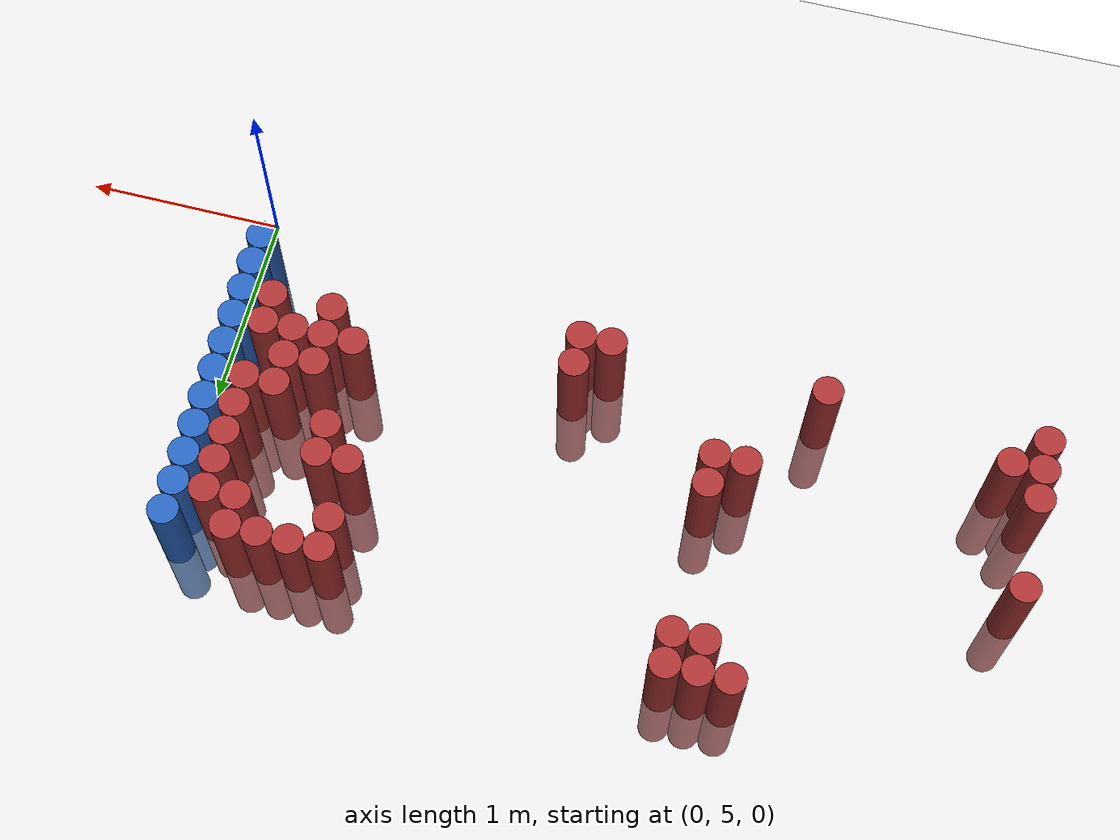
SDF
<sdf version="1.6">
 <world name="default">
  <model name="ground_plane">
   <static>1</static>
   <link name="link">
    <collision name="collision">
     <geometry><plane><normal>0 0 1</normal><size>100 100</size></plane></geometry>
     <surface><friction><ode><mu>100</mu><mu2>50</mu2></ode></friction></surface>
    </collision>
    <visual name="visual">
     <cast_shadows>0</cast_shadows>
     <geometry><plane><normal>0 0 1</normal><size>100 100</size></plane></geometry>
     <material>
      <script><uri>file://media/materials/scripts/gazebo.material</uri><name>Gazebo/Grey</name></script>
     </material>
    </visual>
   </link>
  </model>
  <model name="unit_cylinder_149">
   <static>1</static>
   <pose>-3.975000 5.475000 0.000000 0.000000 0.000000 0.000000</pose>
   <link name="link">
    <inertial>
     <mass>1</mass>
     <inertia><ixx>0.145833</ixx><ixy>0</ixy><ixz>0</ixz><iyy>0.145833</iyy><iyz>0</iyz><izz>0.125</izz></inertia>
    </inertial>
    <collision name="collision">
     <geometry><cylinder><radius>0.075000</radius><length>1</length></cylinder></geometry>
    </collision>
    <visual name="visual">
     <geometry><cylinder><radius>0.075000</radius><length>1</length></cylinder></geometry>
     <material>
      <ambient>0.648000 0.192000 0.192000 1</ambient>
      <diffuse>0.648000 0.192000 0.192000 1</diffuse>
     </material>
     <material>
      <script><name>Gazebo/Grey</name><uri>file://media/materials/scripts/gazebo.material</uri></script>
     </material>
    </visual>
   </link>
  </model>
  <model name="unit_cylinder_150">
   <static>1</static>
   <pose>-3.975000 5.625000 0.000000 0.000000 0.000000 0.000000</pose>
   <link name="link">
    <inertial>
     <mass>1</mass>
     <inertia><ixx>0.145833</ixx><ixy>0</ixy><ixz>0</ixz><iyy>0.145833</iyy><iyz>0</iyz><izz>0.125</izz></inertia>
    </inertial>
    <collision name="collision">
     <geometry><cylinder><radius>0.075000</radius><length>1</length></cylinder></geometry>
    </collision>
    <visual name="visual">
     <geometry><cylinder><radius>0.075000</radius><length>1</length></cylinder></geometry>
     <material>
      <ambient>0.648000 0.192000 0.192000 1</ambient>
      <diffuse>0.648000 0.192000 0.192000 1</diffuse>
     </material>
     <material>
      <script><name>Gazebo/Grey</name><uri>file://media/materials/scripts/gazebo.material</uri></script>
     </material>
    </visual>
   </link>
  </model>
  <model name="unit_cylinder_151">
   <static>1</static>
   <pose>-3.975000 5.775000 0.000000 0.000000 0.000000 0.000000</pose>
   <link name="link">
    <inertial>
     <mass>1</mass>
     <inertia><ixx>0.145833</ixx><ixy>0</ixy><ixz>0</ixz><iyy>0.145833</iyy><iyz>0</iyz><izz>0.125</izz></inertia>
    </inertial>
    <collision name="collision">
     <geometry><cylinder><radius>0.075000</radius><length>1</length></cylinder></geometry>
    </collision>
    <visual name="visual">
     <geometry><cylinder><radius>0.075000</radius><length>1</length></cylinder></geometry>
     <material>
      <ambient>0.648000 0.192000 0.192000 1</ambient>
      <diffuse>0.648000 0.192000 0.192000 1</diffuse>
     </material>
     <material>
      <script><name>Gazebo/Grey</name><uri>file://media/materials/scripts/gazebo.material</uri></script>
     </material>
    </visual>
   </link>
  </model>
  <model name="unit_cylinder_152">
   <static>1</static>
   <pose>-3.975000 6.225000 0.000000 0.000000 0.000000 0.000000</pose>
   <link name="link">
    <inertial>
     <mass>1</mass>
     <inertia><ixx>0.145833</ixx><ixy>0</ixy><ixz>0</ixz><iyy>0.145833</iyy><iyz>0</iyz><izz>0.125</izz></inertia>
    </inertial>
    <collision name="collision">
     <geometry><cylinder><radius>0.075000</radius><length>1</length></cylinder></geometry>
    </collision>
    <visual name="visual">
     <geometry><cylinder><radius>0.075000</radius><length>1</length></cylinder></geometry>
     <material>
      <ambient>0.648000 0.192000 0.192000 1</ambient>
      <diffuse>0.648000 0.192000 0.192000 1</diffuse>
     </material>
     <material>
      <script><name>Gazebo/Grey</name><uri>file://media/materials/scripts/gazebo.material</uri></script>
     </material>
    </visual>
   </link>
  </model>
  <model name="unit_cylinder_154">
   <static>1</static>
   <pose>-3.825000 5.625000 0.000000 0.000000 0.000000 0.000000</pose>
   <link name="link">
    <inertial>
     <mass>1</mass>
     <inertia><ixx>0.145833</ixx><ixy>0</ixy><ixz>0</ixz><iyy>0.145833</iyy><iyz>0</iyz><izz>0.125</izz></inertia>
    </inertial>
    <collision name="collision">
     <geometry><cylinder><radius>0.075000</radius><length>1</length></cylinder></geometry>
    </collision>
    <visual name="visual">
     <geometry><cylinder><radius>0.075000</radius><length>1</length></cylinder></geometry>
     <material>
      <ambient>0.648000 0.192000 0.192000 1</ambient>
      <diffuse>0.648000 0.192000 0.192000 1</diffuse>
     </material>
     <material>
      <script><name>Gazebo/Grey</name><uri>file://media/materials/scripts/gazebo.material</uri></script>
     </material>
    </visual>
   </link>
  </model>
  <model name="unit_cylinder_159">
   <static>1</static>
   <pose>-2.925000 5.475000 0.000000 0.000000 0.000000 0.000000</pose>
   <link name="link">
    <inertial>
     <mass>1</mass>
     <inertia><ixx>0.145833</ixx><ixy>0</ixy><ixz>0</ixz><iyy>0.145833</iyy><iyz>0</iyz><izz>0.125</izz></inertia>
    </inertial>
    <collision name="collision">
     <geometry><cylinder><radius>0.075000</radius><length>1</length></cylinder></geometry>
    </collision>
    <visual name="visual">
     <geometry><cylinder><radius>0.075000</radius><length>1</length></cylinder></geometry>
     <material>
      <ambient>0.648000 0.192000 0.192000 1</ambient>
      <diffuse>0.648000 0.192000 0.192000 1</diffuse>
     </material>
     <material>
      <script><name>Gazebo/Grey</name><uri>file://media/materials/scripts/gazebo.material</uri></script>
     </material>
    </visual>
   </link>
  </model>
  <model name="unit_cylinder_161">
   <static>1</static>
   <pose>-2.775000 6.975000 0.000000 0.000000 0.000000 0.000000</pose>
   <link name="link">
    <inertial>
     <mass>1</mass>
     <inertia><ixx>0.145833</ixx><ixy>0</ixy><ixz>0</ixz><iyy>0.145833</iyy><iyz>0</iyz><izz>0.125</izz></inertia>
    </inertial>
    <collision name="collision">
     <geometry><cylinder><radius>0.075000</radius><length>1</length></cylinder></geometry>
    </collision>
    <visual name="visual">
     <geometry><cylinder><radius>0.075000</radius><length>1</length></cylinder></geometry>
     <material>
      <ambient>0.648000 0.192000 0.192000 1</ambient>
      <diffuse>0.648000 0.192000 0.192000 1</diffuse>
     </material>
     <material>
      <script><name>Gazebo/Grey</name><uri>file://media/materials/scripts/gazebo.material</uri></script>
     </material>
    </visual>
   </link>
  </model>
  <model name="unit_cylinder_163">
   <static>1</static>
   <pose>-2.625000 5.925000 0.000000 0.000000 0.000000 0.000000</pose>
   <link name="link">
    <inertial>
     <mass>1</mass>
     <inertia><ixx>0.145833</ixx><ixy>0</ixy><ixz>0</ixz><iyy>0.145833</iyy><iyz>0</iyz><izz>0.125</izz></inertia>
    </inertial>
    <collision name="collision">
     <geometry><cylinder><radius>0.075000</radius><length>1</length></cylinder></geometry>
    </collision>
    <visual name="visual">
     <geometry><cylinder><radius>0.075000</radius><length>1</length></cylinder></geometry>
     <material>
      <ambient>0.648000 0.192000 0.192000 1</ambient>
      <diffuse>0.648000 0.192000 0.192000 1</diffuse>
     </material>
     <material>
      <script><name>Gazebo/Grey</name><uri>file://media/materials/scripts/gazebo.material</uri></script>
     </material>
    </visual>
   </link>
  </model>
  <model name="unit_cylinder_164">
   <static>1</static>
   <pose>-2.625000 6.825000 0.000000 0.000000 0.000000 0.000000</pose>
   <link name="link">
    <inertial>
     <mass>1</mass>
     <inertia><ixx>0.145833</ixx><ixy>0</ixy><ixz>0</ixz><iyy>0.145833</iyy><iyz>0</iyz><izz>0.125</izz></inertia>
    </inertial>
    <collision name="collision">
     <geometry><cylinder><radius>0.075000</radius><length>1</length></cylinder></geometry>
    </collision>
    <visual name="visual">
     <geometry><cylinder><radius>0.075000</radius><length>1</length></cylinder></geometry>
     <material>
      <ambient>0.648000 0.192000 0.192000 1</ambient>
      <diffuse>0.648000 0.192000 0.192000 1</diffuse>
     </material>
     <material>
      <script><name>Gazebo/Grey</name><uri>file://media/materials/scripts/gazebo.material</uri></script>
     </material>
    </visual>
   </link>
  </model>
  <model name="unit_cylinder_165">
   <static>1</static>
   <pose>-2.625000 6.975000 0.000000 0.000000 0.000000 0.000000</pose>
   <link name="link">
    <inertial>
     <mass>1</mass>
     <inertia><ixx>0.145833</ixx><ixy>0</ixy><ixz>0</ixz><iyy>0.145833</iyy><iyz>0</iyz><izz>0.125</izz></inertia>
    </inertial>
    <collision name="collision">
     <geometry><cylinder><radius>0.075000</radius><length>1</length></cylinder></geometry>
    </collision>
    <visual name="visual">
     <geometry><cylinder><radius>0.075000</radius><length>1</length></cylinder></geometry>
     <material>
      <ambient>0.648000 0.192000 0.192000 1</ambient>
      <diffuse>0.648000 0.192000 0.192000 1</diffuse>
     </material>
     <material>
      <script><name>Gazebo/Grey</name><uri>file://media/materials/scripts/gazebo.material</uri></script>
     </material>
    </visual>
   </link>
  </model>
  <model name="unit_cylinder_170">
   <static>1</static>
   <pose>-2.475000 5.925000 0.000000 0.000000 0.000000 0.000000</pose>
   <link name="link">
    <inertial>
     <mass>1</mass>
     <inertia><ixx>0.145833</ixx><ixy>0</ixy><ixz>0</ixz><iyy>0.145833</iyy><iyz>0</iyz><izz>0.125</izz></inertia>
    </inertial>
    <collision name="collision">
     <geometry><cylinder><radius>0.075000</radius><length>1</length></cylinder></geometry>
    </collision>
    <visual name="visual">
     <geometry><cylinder><radius>0.075000</radius><length>1</length></cylinder></geometry>
     <material>
      <ambient>0.648000 0.192000 0.192000 1</ambient>
      <diffuse>0.648000 0.192000 0.192000 1</diffuse>
     </material>
     <material>
      <script><name>Gazebo/Grey</name><uri>file://media/materials/scripts/gazebo.material</uri></script>
     </material>
    </visual>
   </link>
  </model>
  <model name="unit_cylinder_171">
   <static>1</static>
   <pose>-2.475000 6.075000 0.000000 0.000000 0.000000 0.000000</pose>
   <link name="link">
    <inertial>
     <mass>1</mass>
     <inertia><ixx>0.145833</ixx><ixy>0</ixy><ixz>0</ixz><iyy>0.145833</iyy><iyz>0</iyz><izz>0.125</izz></inertia>
    </inertial>
    <collision name="collision">
     <geometry><cylinder><radius>0.075000</radius><length>1</length></cylinder></geometry>
    </collision>
    <visual name="visual">
     <geometry><cylinder><radius>0.075000</radius><length>1</length></cylinder></geometry>
     <material>
      <ambient>0.648000 0.192000 0.192000 1</ambient>
      <diffuse>0.648000 0.192000 0.192000 1</diffuse>
     </material>
     <material>
      <script><name>Gazebo/Grey</name><uri>file://media/materials/scripts/gazebo.material</uri></script>
     </material>
    </visual>
   </link>
  </model>
  <model name="unit_cylinder_172">
   <static>1</static>
   <pose>-2.475000 6.825000 0.000000 0.000000 0.000000 0.000000</pose>
   <link name="link">
    <inertial>
     <mass>1</mass>
     <inertia><ixx>0.145833</ixx><ixy>0</ixy><ixz>0</ixz><iyy>0.145833</iyy><iyz>0</iyz><izz>0.125</izz></inertia>
    </inertial>
    <collision name="collision">
     <geometry><cylinder><radius>0.075000</radius><length>1</length></cylinder></geometry>
    </collision>
    <visual name="visual">
     <geometry><cylinder><radius>0.075000</radius><length>1</length></cylinder></geometry>
     <material>
      <ambient>0.648000 0.192000 0.192000 1</ambient>
      <diffuse>0.648000 0.192000 0.192000 1</diffuse>
     </material>
     <material>
      <script><name>Gazebo/Grey</name><uri>file://media/materials/scripts/gazebo.material</uri></script>
     </material>
    </visual>
   </link>
  </model>
  <model name="unit_cylinder_173">
   <static>1</static>
   <pose>-2.475000 6.975000 0.000000 0.000000 0.000000 0.000000</pose>
   <link name="link">
    <inertial>
     <mass>1</mass>
     <inertia><ixx>0.145833</ixx><ixy>0</ixy><ixz>0</ixz><iyy>0.145833</iyy><iyz>0</iyz><izz>0.125</izz></inertia>
    </inertial>
    <collision name="collision">
     <geometry><cylinder><radius>0.075000</radius><length>1</length></cylinder></geometry>
    </collision>
    <visual name="visual">
     <geometry><cylinder><radius>0.075000</radius><length>1</length></cylinder></geometry>
     <material>
      <ambient>0.648000 0.192000 0.192000 1</ambient>
      <diffuse>0.648000 0.192000 0.192000 1</diffuse>
     </material>
     <material>
      <script><name>Gazebo/Grey</name><uri>file://media/materials/scripts/gazebo.material</uri></script>
     </material>
    </visual>
   </link>
  </model>
  <model name="unit_cylinder_177">
   <static>1</static>
   <pose>-1.875000 5.475000 0.000000 0.000000 0.000000 0.000000</pose>
   <link name="link">
    <inertial>
     <mass>1</mass>
     <inertia><ixx>0.145833</ixx><ixy>0</ixy><ixz>0</ixz><iyy>0.145833</iyy><iyz>0</iyz><izz>0.125</izz></inertia>
    </inertial>
    <collision name="collision">
     <geometry><cylinder><radius>0.075000</radius><length>1</length></cylinder></geometry>
    </collision>
    <visual name="visual">
     <geometry><cylinder><radius>0.075000</radius><length>1</length></cylinder></geometry>
     <material>
      <ambient>0.648000 0.192000 0.192000 1</ambient>
      <diffuse>0.648000 0.192000 0.192000 1</diffuse>
     </material>
     <material>
      <script><name>Gazebo/Grey</name><uri>file://media/materials/scripts/gazebo.material</uri></script>
     </material>
    </visual>
   </link>
  </model>
  <model name="unit_cylinder_178">
   <static>1</static>
   <pose>-1.725000 5.475000 0.000000 0.000000 0.000000 0.000000</pose>
   <link name="link">
    <inertial>
     <mass>1</mass>
     <inertia><ixx>0.145833</ixx><ixy>0</ixy><ixz>0</ixz><iyy>0.145833</iyy><iyz>0</iyz><izz>0.125</izz></inertia>
    </inertial>
    <collision name="collision">
     <geometry><cylinder><radius>0.075000</radius><length>1</length></cylinder></geometry>
    </collision>
    <visual name="visual">
     <geometry><cylinder><radius>0.075000</radius><length>1</length></cylinder></geometry>
     <material>
      <ambient>0.648000 0.192000 0.192000 1</ambient>
      <diffuse>0.648000 0.192000 0.192000 1</diffuse>
     </material>
     <material>
      <script><name>Gazebo/Grey</name><uri>file://media/materials/scripts/gazebo.material</uri></script>
     </material>
    </visual>
   </link>
  </model>
  <model name="unit_cylinder_179">
   <static>1</static>
   <pose>-1.725000 5.625000 0.000000 0.000000 0.000000 0.000000</pose>
   <link name="link">
    <inertial>
     <mass>1</mass>
     <inertia><ixx>0.145833</ixx><ixy>0</ixy><ixz>0</ixz><iyy>0.145833</iyy><iyz>0</iyz><izz>0.125</izz></inertia>
    </inertial>
    <collision name="collision">
     <geometry><cylinder><radius>0.075000</radius><length>1</length></cylinder></geometry>
    </collision>
    <visual name="visual">
     <geometry><cylinder><radius>0.075000</radius><length>1</length></cylinder></geometry>
     <material>
      <ambient>0.648000 0.192000 0.192000 1</ambient>
      <diffuse>0.648000 0.192000 0.192000 1</diffuse>
     </material>
     <material>
      <script><name>Gazebo/Grey</name><uri>file://media/materials/scripts/gazebo.material</uri></script>
     </material>
    </visual>
   </link>
  </model>
  <model name="unit_cylinder_180">
   <static>1</static>
   <pose>-0.825000 6.375000 0.000000 0.000000 0.000000 0.000000</pose>
   <link name="link">
    <inertial>
     <mass>1</mass>
     <inertia><ixx>0.145833</ixx><ixy>0</ixy><ixz>0</ixz><iyy>0.145833</iyy><iyz>0</iyz><izz>0.125</izz></inertia>
    </inertial>
    <collision name="collision">
     <geometry><cylinder><radius>0.075000</radius><length>1</length></cylinder></geometry>
    </collision>
    <visual name="visual">
     <geometry><cylinder><radius>0.075000</radius><length>1</length></cylinder></geometry>
     <material>
      <ambient>0.648000 0.192000 0.192000 1</ambient>
      <diffuse>0.648000 0.192000 0.192000 1</diffuse>
     </material>
     <material>
      <script><name>Gazebo/Grey</name><uri>file://media/materials/scripts/gazebo.material</uri></script>
     </material>
    </visual>
   </link>
  </model>
  <model name="unit_cylinder_181">
   <static>1</static>
   <pose>-0.825000 6.675000 0.000000 0.000000 0.000000 0.000000</pose>
   <link name="link">
    <inertial>
     <mass>1</mass>
     <inertia><ixx>0.145833</ixx><ixy>0</ixy><ixz>0</ixz><iyy>0.145833</iyy><iyz>0</iyz><izz>0.125</izz></inertia>
    </inertial>
    <collision name="collision">
     <geometry><cylinder><radius>0.075000</radius><length>1</length></cylinder></geometry>
    </collision>
    <visual name="visual">
     <geometry><cylinder><radius>0.075000</radius><length>1</length></cylinder></geometry>
     <material>
      <ambient>0.648000 0.192000 0.192000 1</ambient>
      <diffuse>0.648000 0.192000 0.192000 1</diffuse>
     </material>
     <material>
      <script><name>Gazebo/Grey</name><uri>file://media/materials/scripts/gazebo.material</uri></script>
     </material>
    </visual>
   </link>
  </model>
  <model name="unit_cylinder_182">
   <static>1</static>
   <pose>-0.825000 6.825000 0.000000 0.000000 0.000000 0.000000</pose>
   <link name="link">
    <inertial>
     <mass>1</mass>
     <inertia><ixx>0.145833</ixx><ixy>0</ixy><ixz>0</ixz><iyy>0.145833</iyy><iyz>0</iyz><izz>0.125</izz></inertia>
    </inertial>
    <collision name="collision">
     <geometry><cylinder><radius>0.075000</radius><length>1</length></cylinder></geometry>
    </collision>
    <visual name="visual">
     <geometry><cylinder><radius>0.075000</radius><length>1</length></cylinder></geometry>
     <material>
      <ambient>0.648000 0.192000 0.192000 1</ambient>
      <diffuse>0.648000 0.192000 0.192000 1</diffuse>
     </material>
     <material>
      <script><name>Gazebo/Grey</name><uri>file://media/materials/scripts/gazebo.material</uri></script>
     </material>
    </visual>
   </link>
  </model>
  <model name="unit_cylinder_183">
   <static>1</static>
   <pose>-0.675000 5.775000 0.000000 0.000000 0.000000 0.000000</pose>
   <link name="link">
    <inertial>
     <mass>1</mass>
     <inertia><ixx>0.145833</ixx><ixy>0</ixy><ixz>0</ixz><iyy>0.145833</iyy><iyz>0</iyz><izz>0.125</izz></inertia>
    </inertial>
    <collision name="collision">
     <geometry><cylinder><radius>0.075000</radius><length>1</length></cylinder></geometry>
    </collision>
    <visual name="visual">
     <geometry><cylinder><radius>0.075000</radius><length>1</length></cylinder></geometry>
     <material>
      <ambient>0.648000 0.192000 0.192000 1</ambient>
      <diffuse>0.648000 0.192000 0.192000 1</diffuse>
     </material>
     <material>
      <script><name>Gazebo/Grey</name><uri>file://media/materials/scripts/gazebo.material</uri></script>
     </material>
    </visual>
   </link>
  </model>
  <model name="unit_cylinder_184">
   <static>1</static>
   <pose>-0.675000 6.225000 0.000000 0.000000 0.000000 0.000000</pose>
   <link name="link">
    <inertial>
     <mass>1</mass>
     <inertia><ixx>0.145833</ixx><ixy>0</ixy><ixz>0</ixz><iyy>0.145833</iyy><iyz>0</iyz><izz>0.125</izz></inertia>
    </inertial>
    <collision name="collision">
     <geometry><cylinder><radius>0.075000</radius><length>1</length></cylinder></geometry>
    </collision>
    <visual name="visual">
     <geometry><cylinder><radius>0.075000</radius><length>1</length></cylinder></geometry>
     <material>
      <ambient>0.648000 0.192000 0.192000 1</ambient>
      <diffuse>0.648000 0.192000 0.192000 1</diffuse>
     </material>
     <material>
      <script><name>Gazebo/Grey</name><uri>file://media/materials/scripts/gazebo.material</uri></script>
     </material>
    </visual>
   </link>
  </model>
  <model name="unit_cylinder_185">
   <static>1</static>
   <pose>-0.675000 6.375000 0.000000 0.000000 0.000000 0.000000</pose>
   <link name="link">
    <inertial>
     <mass>1</mass>
     <inertia><ixx>0.145833</ixx><ixy>0</ixy><ixz>0</ixz><iyy>0.145833</iyy><iyz>0</iyz><izz>0.125</izz></inertia>
    </inertial>
    <collision name="collision">
     <geometry><cylinder><radius>0.075000</radius><length>1</length></cylinder></geometry>
    </collision>
    <visual name="visual">
     <geometry><cylinder><radius>0.075000</radius><length>1</length></cylinder></geometry>
     <material>
      <ambient>0.648000 0.192000 0.192000 1</ambient>
      <diffuse>0.648000 0.192000 0.192000 1</diffuse>
     </material>
     <material>
      <script><name>Gazebo/Grey</name><uri>file://media/materials/scripts/gazebo.material</uri></script>
     </material>
    </visual>
   </link>
  </model>
  <model name="unit_cylinder_186">
   <static>1</static>
   <pose>-0.675000 6.825000 0.000000 0.000000 0.000000 0.000000</pose>
   <link name="link">
    <inertial>
     <mass>1</mass>
     <inertia><ixx>0.145833</ixx><ixy>0</ixy><ixz>0</ixz><iyy>0.145833</iyy><iyz>0</iyz><izz>0.125</izz></inertia>
    </inertial>
    <collision name="collision">
     <geometry><cylinder><radius>0.075000</radius><length>1</length></cylinder></geometry>
    </collision>
    <visual name="visual">
     <geometry><cylinder><radius>0.075000</radius><length>1</length></cylinder></geometry>
     <material>
      <ambient>0.648000 0.192000 0.192000 1</ambient>
      <diffuse>0.648000 0.192000 0.192000 1</diffuse>
     </material>
     <material>
      <script><name>Gazebo/Grey</name><uri>file://media/materials/scripts/gazebo.material</uri></script>
     </material>
    </visual>
   </link>
  </model>
  <model name="unit_cylinder_191">
   <static>1</static>
   <pose>-0.525000 5.625000 0.000000 0.000000 0.000000 0.000000</pose>
   <link name="link">
    <inertial>
     <mass>1</mass>
     <inertia><ixx>0.145833</ixx><ixy>0</ixy><ixz>0</ixz><iyy>0.145833</iyy><iyz>0</iyz><izz>0.125</izz></inertia>
    </inertial>
    <collision name="collision">
     <geometry><cylinder><radius>0.075000</radius><length>1</length></cylinder></geometry>
    </collision>
    <visual name="visual">
     <geometry><cylinder><radius>0.075000</radius><length>1</length></cylinder></geometry>
     <material>
      <ambient>0.648000 0.192000 0.192000 1</ambient>
      <diffuse>0.648000 0.192000 0.192000 1</diffuse>
     </material>
     <material>
      <script><name>Gazebo/Grey</name><uri>file://media/materials/scripts/gazebo.material</uri></script>
     </material>
    </visual>
   </link>
  </model>
  <model name="unit_cylinder_192">
   <static>1</static>
   <pose>-0.525000 5.775000 0.000000 0.000000 0.000000 0.000000</pose>
   <link name="link">
    <inertial>
     <mass>1</mass>
     <inertia><ixx>0.145833</ixx><ixy>0</ixy><ixz>0</ixz><iyy>0.145833</iyy><iyz>0</iyz><izz>0.125</izz></inertia>
    </inertial>
    <collision name="collision">
     <geometry><cylinder><radius>0.075000</radius><length>1</length></cylinder></geometry>
    </collision>
    <visual name="visual">
     <geometry><cylinder><radius>0.075000</radius><length>1</length></cylinder></geometry>
     <material>
      <ambient>0.648000 0.192000 0.192000 1</ambient>
      <diffuse>0.648000 0.192000 0.192000 1</diffuse>
     </material>
     <material>
      <script><name>Gazebo/Grey</name><uri>file://media/materials/scripts/gazebo.material</uri></script>
     </material>
    </visual>
   </link>
  </model>
  <model name="unit_cylinder_193">
   <static>1</static>
   <pose>-0.525000 5.925000 0.000000 0.000000 0.000000 0.000000</pose>
   <link name="link">
    <inertial>
     <mass>1</mass>
     <inertia><ixx>0.145833</ixx><ixy>0</ixy><ixz>0</ixz><iyy>0.145833</iyy><iyz>0</iyz><izz>0.125</izz></inertia>
    </inertial>
    <collision name="collision">
     <geometry><cylinder><radius>0.075000</radius><length>1</length></cylinder></geometry>
    </collision>
    <visual name="visual">
     <geometry><cylinder><radius>0.075000</radius><length>1</length></cylinder></geometry>
     <material>
      <ambient>0.648000 0.192000 0.192000 1</ambient>
      <diffuse>0.648000 0.192000 0.192000 1</diffuse>
     </material>
     <material>
      <script><name>Gazebo/Grey</name><uri>file://media/materials/scripts/gazebo.material</uri></script>
     </material>
    </visual>
   </link>
  </model>
  <model name="unit_cylinder_194">
   <static>1</static>
   <pose>-0.525000 6.825000 0.000000 0.000000 0.000000 0.000000</pose>
   <link name="link">
    <inertial>
     <mass>1</mass>
     <inertia><ixx>0.145833</ixx><ixy>0</ixy><ixz>0</ixz><iyy>0.145833</iyy><iyz>0</iyz><izz>0.125</izz></inertia>
    </inertial>
    <collision name="collision">
     <geometry><cylinder><radius>0.075000</radius><length>1</length></cylinder></geometry>
    </collision>
    <visual name="visual">
     <geometry><cylinder><radius>0.075000</radius><length>1</length></cylinder></geometry>
     <material>
      <ambient>0.648000 0.192000 0.192000 1</ambient>
      <diffuse>0.648000 0.192000 0.192000 1</diffuse>
     </material>
     <material>
      <script><name>Gazebo/Grey</name><uri>file://media/materials/scripts/gazebo.material</uri></script>
     </material>
    </visual>
   </link>
  </model>
  <model name="unit_cylinder_201">
   <static>1</static>
   <pose>-0.375000 5.775000 0.000000 0.000000 0.000000 0.000000</pose>
   <link name="link">
    <inertial>
     <mass>1</mass>
     <inertia><ixx>0.145833</ixx><ixy>0</ixy><ixz>0</ixz><iyy>0.145833</iyy><iyz>0</iyz><izz>0.125</izz></inertia>
    </inertial>
    <collision name="collision">
     <geometry><cylinder><radius>0.075000</radius><length>1</length></cylinder></geometry>
    </collision>
    <visual name="visual">
     <geometry><cylinder><radius>0.075000</radius><length>1</length></cylinder></geometry>
     <material>
      <ambient>0.648000 0.192000 0.192000 1</ambient>
      <diffuse>0.648000 0.192000 0.192000 1</diffuse>
     </material>
     <material>
      <script><name>Gazebo/Grey</name><uri>file://media/materials/scripts/gazebo.material</uri></script>
     </material>
    </visual>
   </link>
  </model>
  <model name="unit_cylinder_202">
   <static>1</static>
   <pose>-0.375000 5.925000 0.000000 0.000000 0.000000 0.000000</pose>
   <link name="link">
    <inertial>
     <mass>1</mass>
     <inertia><ixx>0.145833</ixx><ixy>0</ixy><ixz>0</ixz><iyy>0.145833</iyy><iyz>0</iyz><izz>0.125</izz></inertia>
    </inertial>
    <collision name="collision">
     <geometry><cylinder><radius>0.075000</radius><length>1</length></cylinder></geometry>
    </collision>
    <visual name="visual">
     <geometry><cylinder><radius>0.075000</radius><length>1</length></cylinder></geometry>
     <material>
      <ambient>0.648000 0.192000 0.192000 1</ambient>
      <diffuse>0.648000 0.192000 0.192000 1</diffuse>
     </material>
     <material>
      <script><name>Gazebo/Grey</name><uri>file://media/materials/scripts/gazebo.material</uri></script>
     </material>
    </visual>
   </link>
  </model>
  <model name="unit_cylinder_203">
   <static>1</static>
   <pose>-0.375000 6.075000 0.000000 0.000000 0.000000 0.000000</pose>
   <link name="link">
    <inertial>
     <mass>1</mass>
     <inertia><ixx>0.145833</ixx><ixy>0</ixy><ixz>0</ixz><iyy>0.145833</iyy><iyz>0</iyz><izz>0.125</izz></inertia>
    </inertial>
    <collision name="collision">
     <geometry><cylinder><radius>0.075000</radius><length>1</length></cylinder></geometry>
    </collision>
    <visual name="visual">
     <geometry><cylinder><radius>0.075000</radius><length>1</length></cylinder></geometry>
     <material>
      <ambient>0.648000 0.192000 0.192000 1</ambient>
      <diffuse>0.648000 0.192000 0.192000 1</diffuse>
     </material>
     <material>
      <script><name>Gazebo/Grey</name><uri>file://media/materials/scripts/gazebo.material</uri></script>
     </material>
    </visual>
   </link>
  </model>
  <model name="unit_cylinder_204">
   <static>1</static>
   <pose>-0.375000 6.675000 0.000000 0.000000 0.000000 0.000000</pose>
   <link name="link">
    <inertial>
     <mass>1</mass>
     <inertia><ixx>0.145833</ixx><ixy>0</ixy><ixz>0</ixz><iyy>0.145833</iyy><iyz>0</iyz><izz>0.125</izz></inertia>
    </inertial>
    <collision name="collision">
     <geometry><cylinder><radius>0.075000</radius><length>1</length></cylinder></geometry>
    </collision>
    <visual name="visual">
     <geometry><cylinder><radius>0.075000</radius><length>1</length></cylinder></geometry>
     <material>
      <ambient>0.648000 0.192000 0.192000 1</ambient>
      <diffuse>0.648000 0.192000 0.192000 1</diffuse>
     </material>
     <material>
      <script><name>Gazebo/Grey</name><uri>file://media/materials/scripts/gazebo.material</uri></script>
     </material>
    </visual>
   </link>
  </model>
  <model name="unit_cylinder_205">
   <static>1</static>
   <pose>-0.375000 6.825000 0.000000 0.000000 0.000000 0.000000</pose>
   <link name="link">
    <inertial>
     <mass>1</mass>
     <inertia><ixx>0.145833</ixx><ixy>0</ixy><ixz>0</ixz><iyy>0.145833</iyy><iyz>0</iyz><izz>0.125</izz></inertia>
    </inertial>
    <collision name="collision">
     <geometry><cylinder><radius>0.075000</radius><length>1</length></cylinder></geometry>
    </collision>
    <visual name="visual">
     <geometry><cylinder><radius>0.075000</radius><length>1</length></cylinder></geometry>
     <material>
      <ambient>0.648000 0.192000 0.192000 1</ambient>
      <diffuse>0.648000 0.192000 0.192000 1</diffuse>
     </material>
     <material>
      <script><name>Gazebo/Grey</name><uri>file://media/materials/scripts/gazebo.material</uri></script>
     </material>
    </visual>
   </link>
  </model>
  <model name="unit_cylinder_210">
   <static>1</static>
   <pose>-0.225000 5.625000 0.000000 0.000000 0.000000 0.000000</pose>
   <link name="link">
    <inertial>
     <mass>1</mass>
     <inertia><ixx>0.145833</ixx><ixy>0</ixy><ixz>0</ixz><iyy>0.145833</iyy><iyz>0</iyz><izz>0.125</izz></inertia>
    </inertial>
    <collision name="collision">
     <geometry><cylinder><radius>0.075000</radius><length>1</length></cylinder></geometry>
    </collision>
    <visual name="visual">
     <geometry><cylinder><radius>0.075000</radius><length>1</length></cylinder></geometry>
     <material>
      <ambient>0.648000 0.192000 0.192000 1</ambient>
      <diffuse>0.648000 0.192000 0.192000 1</diffuse>
     </material>
     <material>
      <script><name>Gazebo/Grey</name><uri>file://media/materials/scripts/gazebo.material</uri></script>
     </material>
    </visual>
   </link>
  </model>
  <model name="unit_cylinder_211">
   <static>1</static>
   <pose>-0.225000 5.775000 0.000000 0.000000 0.000000 0.000000</pose>
   <link name="link">
    <inertial>
     <mass>1</mass>
     <inertia><ixx>0.145833</ixx><ixy>0</ixy><ixz>0</ixz><iyy>0.145833</iyy><iyz>0</iyz><izz>0.125</izz></inertia>
    </inertial>
    <collision name="collision">
     <geometry><cylinder><radius>0.075000</radius><length>1</length></cylinder></geometry>
    </collision>
    <visual name="visual">
     <geometry><cylinder><radius>0.075000</radius><length>1</length></cylinder></geometry>
     <material>
      <ambient>0.648000 0.192000 0.192000 1</ambient>
      <diffuse>0.648000 0.192000 0.192000 1</diffuse>
     </material>
     <material>
      <script><name>Gazebo/Grey</name><uri>file://media/materials/scripts/gazebo.material</uri></script>
     </material>
    </visual>
   </link>
  </model>
  <model name="unit_cylinder_212">
   <static>1</static>
   <pose>-0.225000 6.075000 0.000000 0.000000 0.000000 0.000000</pose>
   <link name="link">
    <inertial>
     <mass>1</mass>
     <inertia><ixx>0.145833</ixx><ixy>0</ixy><ixz>0</ixz><iyy>0.145833</iyy><iyz>0</iyz><izz>0.125</izz></inertia>
    </inertial>
    <collision name="collision">
     <geometry><cylinder><radius>0.075000</radius><length>1</length></cylinder></geometry>
    </collision>
    <visual name="visual">
     <geometry><cylinder><radius>0.075000</radius><length>1</length></cylinder></geometry>
     <material>
      <ambient>0.648000 0.192000 0.192000 1</ambient>
      <diffuse>0.648000 0.192000 0.192000 1</diffuse>
     </material>
     <material>
      <script><name>Gazebo/Grey</name><uri>file://media/materials/scripts/gazebo.material</uri></script>
     </material>
    </visual>
   </link>
  </model>
  <model name="unit_cylinder_213">
   <static>1</static>
   <pose>-0.225000 6.225000 0.000000 0.000000 0.000000 0.000000</pose>
   <link name="link">
    <inertial>
     <mass>1</mass>
     <inertia><ixx>0.145833</ixx><ixy>0</ixy><ixz>0</ixz><iyy>0.145833</iyy><iyz>0</iyz><izz>0.125</izz></inertia>
    </inertial>
    <collision name="collision">
     <geometry><cylinder><radius>0.075000</radius><length>1</length></cylinder></geometry>
    </collision>
    <visual name="visual">
     <geometry><cylinder><radius>0.075000</radius><length>1</length></cylinder></geometry>
     <material>
      <ambient>0.648000 0.192000 0.192000 1</ambient>
      <diffuse>0.648000 0.192000 0.192000 1</diffuse>
     </material>
     <material>
      <script><name>Gazebo/Grey</name><uri>file://media/materials/scripts/gazebo.material</uri></script>
     </material>
    </visual>
   </link>
  </model>
  <model name="unit_cylinder_214">
   <static>1</static>
   <pose>-0.225000 6.375000 0.000000 0.000000 0.000000 0.000000</pose>
   <link name="link">
    <inertial>
     <mass>1</mass>
     <inertia><ixx>0.145833</ixx><ixy>0</ixy><ixz>0</ixz><iyy>0.145833</iyy><iyz>0</iyz><izz>0.125</izz></inertia>
    </inertial>
    <collision name="collision">
     <geometry><cylinder><radius>0.075000</radius><length>1</length></cylinder></geometry>
    </collision>
    <visual name="visual">
     <geometry><cylinder><radius>0.075000</radius><length>1</length></cylinder></geometry>
     <material>
      <ambient>0.648000 0.192000 0.192000 1</ambient>
      <diffuse>0.648000 0.192000 0.192000 1</diffuse>
     </material>
     <material>
      <script><name>Gazebo/Grey</name><uri>file://media/materials/scripts/gazebo.material</uri></script>
     </material>
    </visual>
   </link>
  </model>
  <model name="unit_cylinder_215">
   <static>1</static>
   <pose>-0.225000 6.525000 0.000000 0.000000 0.000000 0.000000</pose>
   <link name="link">
    <inertial>
     <mass>1</mass>
     <inertia><ixx>0.145833</ixx><ixy>0</ixy><ixz>0</ixz><iyy>0.145833</iyy><iyz>0</iyz><izz>0.125</izz></inertia>
    </inertial>
    <collision name="collision">
     <geometry><cylinder><radius>0.075000</radius><length>1</length></cylinder></geometry>
    </collision>
    <visual name="visual">
     <geometry><cylinder><radius>0.075000</radius><length>1</length></cylinder></geometry>
     <material>
      <ambient>0.648000 0.192000 0.192000 1</ambient>
      <diffuse>0.648000 0.192000 0.192000 1</diffuse>
     </material>
     <material>
      <script><name>Gazebo/Grey</name><uri>file://media/materials/scripts/gazebo.material</uri></script>
     </material>
    </visual>
   </link>
  </model>
  <model name="unit_cylinder_216">
   <static>1</static>
   <pose>-0.225000 6.675000 0.000000 0.000000 0.000000 0.000000</pose>
   <link name="link">
    <inertial>
     <mass>1</mass>
     <inertia><ixx>0.145833</ixx><ixy>0</ixy><ixz>0</ixz><iyy>0.145833</iyy><iyz>0</iyz><izz>0.125</izz></inertia>
    </inertial>
    <collision name="collision">
     <geometry><cylinder><radius>0.075000</radius><length>1</length></cylinder></geometry>
    </collision>
    <visual name="visual">
     <geometry><cylinder><radius>0.075000</radius><length>1</length></cylinder></geometry>
     <material>
      <ambient>0.648000 0.192000 0.192000 1</ambient>
      <diffuse>0.648000 0.192000 0.192000 1</diffuse>
     </material>
     <material>
      <script><name>Gazebo/Grey</name><uri>file://media/materials/scripts/gazebo.material</uri></script>
     </material>
    </visual>
   </link>
  </model>
  <model name="unit_cylinder_225">
   <static>1</static>
   <pose>-0.075000 5.325000 0.000000 0.000000 0.000000 0.000000</pose>
   <link name="link">
    <inertial>
     <mass>1</mass>
     <inertia><ixx>0.145833</ixx><ixy>0</ixy><ixz>0</ixz><iyy>0.145833</iyy><iyz>0</iyz><izz>0.125</izz></inertia>
    </inertial>
    <collision name="collision">
     <geometry><cylinder><radius>0.075000</radius><length>1</length></cylinder></geometry>
    </collision>
    <visual name="visual">
     <geometry><cylinder><radius>0.075000</radius><length>1</length></cylinder></geometry>
     <material>
      <ambient>0.152000 0.379000 0.720000 1</ambient>
      <diffuse>0.152000 0.379000 0.720000 1</diffuse>
     </material>
     <material>
      <script><name>Gazebo/Grey</name><uri>file://media/materials/scripts/gazebo.material</uri></script>
     </material>
    </visual>
   </link>
  </model>
  <model name="unit_cylinder_226">
   <static>1</static>
   <pose>-0.075000 5.475000 0.000000 0.000000 0.000000 0.000000</pose>
   <link name="link">
    <inertial>
     <mass>1</mass>
     <inertia><ixx>0.145833</ixx><ixy>0</ixy><ixz>0</ixz><iyy>0.145833</iyy><iyz>0</iyz><izz>0.125</izz></inertia>
    </inertial>
    <collision name="collision">
     <geometry><cylinder><radius>0.075000</radius><length>1</length></cylinder></geometry>
    </collision>
    <visual name="visual">
     <geometry><cylinder><radius>0.075000</radius><length>1</length></cylinder></geometry>
     <material>
      <ambient>0.152000 0.379000 0.720000 1</ambient>
      <diffuse>0.152000 0.379000 0.720000 1</diffuse>
     </material>
     <material>
      <script><name>Gazebo/Grey</name><uri>file://media/materials/scripts/gazebo.material</uri></script>
     </material>
    </visual>
   </link>
  </model>
  <model name="unit_cylinder_227">
   <static>1</static>
   <pose>-0.075000 5.625000 0.000000 0.000000 0.000000 0.000000</pose>
   <link name="link">
    <inertial>
     <mass>1</mass>
     <inertia><ixx>0.145833</ixx><ixy>0</ixy><ixz>0</ixz><iyy>0.145833</iyy><iyz>0</iyz><izz>0.125</izz></inertia>
    </inertial>
    <collision name="collision">
     <geometry><cylinder><radius>0.075000</radius><length>1</length></cylinder></geometry>
    </collision>
    <visual name="visual">
     <geometry><cylinder><radius>0.075000</radius><length>1</length></cylinder></geometry>
     <material>
      <ambient>0.152000 0.379000 0.720000 1</ambient>
      <diffuse>0.152000 0.379000 0.720000 1</diffuse>
     </material>
     <material>
      <script><name>Gazebo/Grey</name><uri>file://media/materials/scripts/gazebo.material</uri></script>
     </material>
    </visual>
   </link>
  </model>
  <model name="unit_cylinder_228">
   <static>1</static>
   <pose>-0.075000 5.775000 0.000000 0.000000 0.000000 0.000000</pose>
   <link name="link">
    <inertial>
     <mass>1</mass>
     <inertia><ixx>0.145833</ixx><ixy>0</ixy><ixz>0</ixz><iyy>0.145833</iyy><iyz>0</iyz><izz>0.125</izz></inertia>
    </inertial>
    <collision name="collision">
     <geometry><cylinder><radius>0.075000</radius><length>1</length></cylinder></geometry>
    </collision>
    <visual name="visual">
     <geometry><cylinder><radius>0.075000</radius><length>1</length></cylinder></geometry>
     <material>
      <ambient>0.152000 0.379000 0.720000 1</ambient>
      <diffuse>0.152000 0.379000 0.720000 1</diffuse>
     </material>
     <material>
      <script><name>Gazebo/Grey</name><uri>file://media/materials/scripts/gazebo.material</uri></script>
     </material>
    </visual>
   </link>
  </model>
  <model name="unit_cylinder_229">
   <static>1</static>
   <pose>-0.075000 5.925000 0.000000 0.000000 0.000000 0.000000</pose>
   <link name="link">
    <inertial>
     <mass>1</mass>
     <inertia><ixx>0.145833</ixx><ixy>0</ixy><ixz>0</ixz><iyy>0.145833</iyy><iyz>0</iyz><izz>0.125</izz></inertia>
    </inertial>
    <collision name="collision">
     <geometry><cylinder><radius>0.075000</radius><length>1</length></cylinder></geometry>
    </collision>
    <visual name="visual">
     <geometry><cylinder><radius>0.075000</radius><length>1</length></cylinder></geometry>
     <material>
      <ambient>0.152000 0.379000 0.720000 1</ambient>
      <diffuse>0.152000 0.379000 0.720000 1</diffuse>
     </material>
     <material>
      <script><name>Gazebo/Grey</name><uri>file://media/materials/scripts/gazebo.material</uri></script>
     </material>
    </visual>
   </link>
  </model>
  <model name="unit_cylinder_230">
   <static>1</static>
   <pose>-0.075000 6.075000 0.000000 0.000000 0.000000 0.000000</pose>
   <link name="link">
    <inertial>
     <mass>1</mass>
     <inertia><ixx>0.145833</ixx><ixy>0</ixy><ixz>0</ixz><iyy>0.145833</iyy><iyz>0</iyz><izz>0.125</izz></inertia>
    </inertial>
    <collision name="collision">
     <geometry><cylinder><radius>0.075000</radius><length>1</length></cylinder></geometry>
    </collision>
    <visual name="visual">
     <geometry><cylinder><radius>0.075000</radius><length>1</length></cylinder></geometry>
     <material>
      <ambient>0.152000 0.379000 0.720000 1</ambient>
      <diffuse>0.152000 0.379000 0.720000 1</diffuse>
     </material>
     <material>
      <script><name>Gazebo/Grey</name><uri>file://media/materials/scripts/gazebo.material</uri></script>
     </material>
    </visual>
   </link>
  </model>
  <model name="unit_cylinder_231">
   <static>1</static>
   <pose>-0.075000 6.225000 0.000000 0.000000 0.000000 0.000000</pose>
   <link name="link">
    <inertial>
     <mass>1</mass>
     <inertia><ixx>0.145833</ixx><ixy>0</ixy><ixz>0</ixz><iyy>0.145833</iyy><iyz>0</iyz><izz>0.125</izz></inertia>
    </inertial>
    <collision name="collision">
     <geometry><cylinder><radius>0.075000</radius><length>1</length></cylinder></geometry>
    </collision>
    <visual name="visual">
     <geometry><cylinder><radius>0.075000</radius><length>1</length></cylinder></geometry>
     <material>
      <ambient>0.152000 0.379000 0.720000 1</ambient>
      <diffuse>0.152000 0.379000 0.720000 1</diffuse>
     </material>
     <material>
      <script><name>Gazebo/Grey</name><uri>file://media/materials/scripts/gazebo.material</uri></script>
     </material>
    </visual>
   </link>
  </model>
  <model name="unit_cylinder_232">
   <static>1</static>
   <pose>-0.075000 6.375000 0.000000 0.000000 0.000000 0.000000</pose>
   <link name="link">
    <inertial>
     <mass>1</mass>
     <inertia><ixx>0.145833</ixx><ixy>0</ixy><ixz>0</ixz><iyy>0.145833</iyy><iyz>0</iyz><izz>0.125</izz></inertia>
    </inertial>
    <collision name="collision">
     <geometry><cylinder><radius>0.075000</radius><length>1</length></cylinder></geometry>
    </collision>
    <visual name="visual">
     <geometry><cylinder><radius>0.075000</radius><length>1</length></cylinder></geometry>
     <material>
      <ambient>0.152000 0.379000 0.720000 1</ambient>
      <diffuse>0.152000 0.379000 0.720000 1</diffuse>
     </material>
     <material>
      <script><name>Gazebo/Grey</name><uri>file://media/materials/scripts/gazebo.material</uri></script>
     </material>
    </visual>
   </link>
  </model>
  <model name="unit_cylinder_233">
   <static>1</static>
   <pose>-0.075000 6.525000 0.000000 0.000000 0.000000 0.000000</pose>
   <link name="link">
    <inertial>
     <mass>1</mass>
     <inertia><ixx>0.145833</ixx><ixy>0</ixy><ixz>0</ixz><iyy>0.145833</iyy><iyz>0</iyz><izz>0.125</izz></inertia>
    </inertial>
    <collision name="collision">
     <geometry><cylinder><radius>0.075000</radius><length>1</length></cylinder></geometry>
    </collision>
    <visual name="visual">
     <geometry><cylinder><radius>0.075000</radius><length>1</length></cylinder></geometry>
     <material>
      <ambient>0.152000 0.379000 0.720000 1</ambient>
      <diffuse>0.152000 0.379000 0.720000 1</diffuse>
     </material>
     <material>
      <script><name>Gazebo/Grey</name><uri>file://media/materials/scripts/gazebo.material</uri></script>
     </material>
    </visual>
   </link>
  </model>
  <model name="unit_cylinder_234">
   <static>1</static>
   <pose>-0.075000 6.675000 0.000000 0.000000 0.000000 0.000000</pose>
   <link name="link">
    <inertial>
     <mass>1</mass>
     <inertia><ixx>0.145833</ixx><ixy>0</ixy><ixz>0</ixz><iyy>0.145833</iyy><iyz>0</iyz><izz>0.125</izz></inertia>
    </inertial>
    <collision name="collision">
     <geometry><cylinder><radius>0.075000</radius><length>1</length></cylinder></geometry>
    </collision>
    <visual name="visual">
     <geometry><cylinder><radius>0.075000</radius><length>1</length></cylinder></geometry>
     <material>
      <ambient>0.152000 0.379000 0.720000 1</ambient>
      <diffuse>0.152000 0.379000 0.720000 1</diffuse>
     </material>
     <material>
      <script><name>Gazebo/Grey</name><uri>file://media/materials/scripts/gazebo.material</uri></script>
     </material>
    </visual>
   </link>
  </model>
  <model name="unit_cylinder_235">
   <static>1</static>
   <pose>-0.075000 6.825000 0.000000 0.000000 0.000000 0.000000</pose>
   <link name="link">
    <inertial>
     <mass>1</mass>
     <inertia><ixx>0.145833</ixx><ixy>0</ixy><ixz>0</ixz><iyy>0.145833</iyy><iyz>0</iyz><izz>0.125</izz></inertia>
    </inertial>
    <collision name="collision">
     <geometry><cylinder><radius>0.075000</radius><length>1</length></cylinder></geometry>
    </collision>
    <visual name="visual">
     <geometry><cylinder><radius>0.075000</radius><length>1</length></cylinder></geometry>
     <material>
      <ambient>0.152000 0.379000 0.720000 1</ambient>
      <diffuse>0.152000 0.379000 0.720000 1</diffuse>
     </material>
     <material>
      <script><name>Gazebo/Grey</name><uri>file://media/materials/scripts/gazebo.material</uri></script>
     </material>
    </visual>
   </link>
  </model>
 </world>
</sdf>
